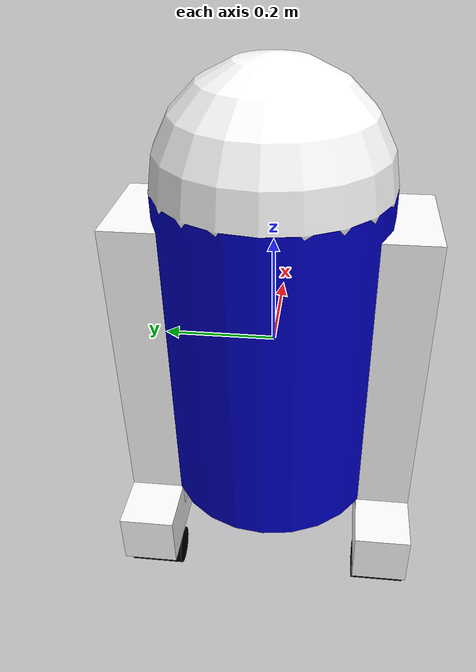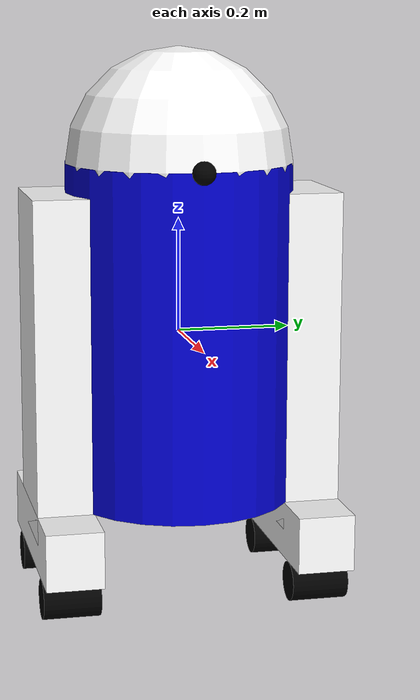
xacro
<?xml version="1.0"?>
<robot name="r2d2"
       xmlns:xacro="http://www.ros.org/wiki/xacro">

    <xacro:arg name="controllers_file" default=""/>

  <material name="blue">
    <color rgba="0 0 0.8 1"/>
  </material>

  <material name="black">
    <color rgba="0 0 0 1"/>
  </material>

  <material name="white">
    <color rgba="1 1 1 1"/>
  </material>
  <!-- Цвет корпуса -->
  <gazebo reference="base_link">
      <material>Gazebo/Blue</material>
  </gazebo>

  <!-- Цвет ног -->
  <gazebo reference="right_leg">
      <material>Gazebo/White</material>
  </gazebo>

  <gazebo reference="left_leg">
      <material>Gazebo/White</material>
  </gazebo>

  <!-- Цвет оснований -->
  <gazebo reference="right_base">
      <material>Gazebo/White</material>
  </gazebo>

  <gazebo reference="left_base">
      <material>Gazebo/White</material>
  </gazebo>

  <!-- Цвет головы -->
  <gazebo reference="head">
      <material>Gazebo/White</material>
  </gazebo>

  <!-- Цвет объектива -->
  <gazebo reference="camera_link">
      <material>Gazebo/Black</material>
  </gazebo>
<xacro:macro name="wheel" params="name parent x">

    <link name="${name}">
        <visual>
            <origin xyz="0 0 0" rpy="1.57075 0 0"/>
            <geometry>
                <cylinder length="0.1" radius="0.035"/>
            </geometry>
            <material name="black"/>
        </visual>

        <collision>
            <origin xyz="0 0 0" rpy="1.57075 0 0"/>
            <geometry>
                <cylinder length="0.1" radius="0.035"/>
            </geometry>
        </collision>

        <inertial>
            <origin xyz="0 0 0" rpy="0 0 0"/>
            <mass value="0.1"/>
            <inertia
                ixx="0.000113958"
                ixy="0"
                ixz="0"
                iyy="0.00006125"
                iyz="0"
                izz="0.000113958"/>
        </inertial>
    </link>

    <joint name="${name}_joint" type="continuous">
        <parent link="${parent}"/>
        <child link="${name}"/>

        <origin xyz="${x} 0 -0.085" rpy="0 0 0"/>

        <axis xyz="0 1 0"/>

        <limit effort="3.0" velocity="20.0"/>
    </joint>

    <gazebo reference="${name}">
        <material>Gazebo/Black</material>
    </gazebo>

</xacro:macro>

  <link name="base_link">
    <visual>
      <geometry>
        <cylinder length="0.6" radius="0.2"/>
      </geometry>
      <material name="blue"/>
    </visual>

    <collision>
        <geometry>
            <cylinder length="0.6" radius="0.2"/>
        </geometry>
    </collision>

    <inertial>
        <origin xyz="0 0 0" rpy="0 0 0"/>

        <mass value="5.0"/>

        <inertia
            ixx="0.2"
            ixy="0"
            ixz="0"
            iyy="0.2"
            iyz="0"
            izz="0.1"/>
    </inertial>
  </link>

  <link name="right_leg">
    <visual>
      <geometry>
        <box size="0.6 0.1 0.2"/>
      </geometry>
      <origin rpy="0 1.57075 0" xyz="0 0 -0.3"/>
      <material name="white"/>
    </visual>

    <collision>
        <origin xyz="0 0 -0.3" rpy="0 1.57075 0"/>
        <geometry>
            <box size="0.6 0.1 0.2"/>
        </geometry>
    </collision>

    <inertial>
        <origin xyz="0 0 -0.3" rpy="0 0 0"/>

        <mass value="0.5"/>

        <inertia
            ixx="0.015417"
            ixy="0"
            ixz="0"
            iyy="0.016667"
            iyz="0"
            izz="0.002083"/>
    </inertial>
  </link>

  <joint name="base_to_right_leg" type="fixed">
    <parent link="base_link"/>
    <child link="right_leg"/>
    <origin xyz="0 -0.22 0.25"/>
  </joint>

  <link name="right_base">
    <visual>
      <geometry>
        <box size="0.4 0.1 0.1"/>
      </geometry>
      <material name="white"/>
    </visual>

    <collision>
      <geometry>
        <box size="0.4 0.1 0.1"/>
      </geometry>
    </collision>

    <inertial>
        <origin xyz="0 0 0" rpy="0 0 0"/>

        <mass value="0.3"/>

        <inertia
            ixx="0.0005"
            ixy="0"
            ixz="0"
            iyy="0.00425"
            iyz="0"
            izz="0.00425"/>
    </inertial>
  </link>

  <joint name="right_base_joint" type="fixed">
    <parent link="right_leg"/>
    <child link="right_base"/>
    <origin xyz="0 0 -0.6"/>
  </joint>

<xacro:wheel name="right_front_wheel"
             parent="right_base"
             x="0.133333333333"/>

<xacro:wheel name="right_back_wheel"
             parent="right_base"
             x="-0.133333333333"/>

  <link name="left_leg">
    <visual>
      <geometry>
        <box size="0.6 0.1 0.2"/>
      </geometry>
      <origin rpy="0 1.57075 0" xyz="0 0 -0.3"/>
      <material name="white"/>
    </visual>

    <collision>
        <origin xyz="0 0 -0.3" rpy="0 1.57075 0"/>
        <geometry>
            <box size="0.6 0.1 0.2"/>
        </geometry>
    </collision>

    <inertial>
        <origin xyz="0 0 -0.3" rpy="0 0 0"/>

        <mass value="0.5"/>

        <inertia
            ixx="0.015417"
            ixy="0"
            ixz="0"
            iyy="0.016667"
            iyz="0"
            izz="0.002083"/>
    </inertial>
  </link>

  <joint name="base_to_left_leg" type="fixed">
    <parent link="base_link"/>
    <child link="left_leg"/>
    <origin xyz="0 0.22 0.25"/>
  </joint>

  <link name="left_base">
    <visual>
      <geometry>
        <box size="0.4 0.1 0.1"/>
      </geometry>
      <material name="white"/>
    </visual>
    <collision>
      <geometry>
        <box size="0.4 0.1 0.1"/>
      </geometry>
    </collision>

    <inertial>
        <origin xyz="0 0 0" rpy="0 0 0"/>

        <mass value="0.3"/>

        <inertia
            ixx="0.0005"
            ixy="0"
            ixz="0"
            iyy="0.00425"
            iyz="0"
            izz="0.00425"/>
    </inertial>
  </link>

  <joint name="left_base_joint" type="fixed">
    <parent link="left_leg"/>
    <child link="left_base"/>
    <origin xyz="0 0 -0.6"/>
  </joint>

<xacro:wheel name="left_front_wheel"
             parent="left_base"
             x="0.133333333333"/>

<xacro:wheel name="left_back_wheel"
             parent="left_base"
             x="-0.133333333333"/>

<link name="head">
    <visual>
        <geometry>
            <sphere radius="0.2"/>
        </geometry>
        <material name="white"/>
    </visual>

    <collision>
        <geometry>
            <sphere radius="0.2"/>
        </geometry>
    </collision>

    <inertial>
        <origin xyz="0 0 0" rpy="0 0 0"/>

        <mass value="1.0"/>

        <inertia
            ixx="0.016"
            ixy="0"
            ixz="0"
            iyy="0.016"
            iyz="0"
            izz="0.016"/>
    </inertial>
</link>

<link name="camera_link">
    <visual>
        <geometry>
            <sphere radius="0.02"/>
        </geometry>
        <material name="black"/>
    </visual>
    <inertial>
        <origin xyz="0 0 0" rpy="0 0 0"/>
        <mass value="0.01"/>
        <inertia
            ixx="0.0000016"
            ixy="0"
            ixz="0"
            iyy="0.0000016"
            iyz="0"
            izz="0.0000016"/>
    </inertial>
</link>

<joint name="head_to_camera" type="fixed">
    <parent link="head"/>
    <child link="camera_link"/>

    <origin xyz="0.2 0 0" rpy="0 0 0"/>
</joint>

<joint name="head_swivel" type="revolute">
    <parent link="base_link"/>
    <child link="head"/>

    <origin xyz="0 0 0.3" rpy="0 0 0"/>

    <axis xyz="0 0 1"/>

    <limit
        lower="-1.570796"
        upper="1.570796"
        effort="5.0"
        velocity="1.0"/>
</joint>

<ros2_control name="GazeboSystem" type="system">

    <hardware>
        <plugin>gazebo_ros2_control/GazeboSystem</plugin>
    </hardware>

    <joint name="left_front_wheel_joint">
        <command_interface name="velocity"/>
        <state_interface name="position"/>
        <state_interface name="velocity"/>
    </joint>

    <joint name="left_back_wheel_joint">
        <command_interface name="velocity"/>
        <state_interface name="position"/>
        <state_interface name="velocity"/>
    </joint>

    <joint name="right_front_wheel_joint">
        <command_interface name="velocity"/>
        <state_interface name="position"/>
        <state_interface name="velocity"/>
    </joint>

    <joint name="right_back_wheel_joint">
        <command_interface name="velocity"/>
        <state_interface name="position"/>
        <state_interface name="velocity"/>
    </joint>

    <joint name="head_swivel">
        <command_interface name="position"/>
        <state_interface name="position"/>
        <state_interface name="velocity"/>
    </joint>

</ros2_control>

<gazebo>
    <plugin name="gazebo_ros2_control"
            filename="libgazebo_ros2_control.so">

        <robot_param>robot_description</robot_param>
        <robot_param_node>robot_state_publisher</robot_param_node>

        <parameters>$(arg controllers_file)</parameters>

    </plugin>
</gazebo>

</robot>
